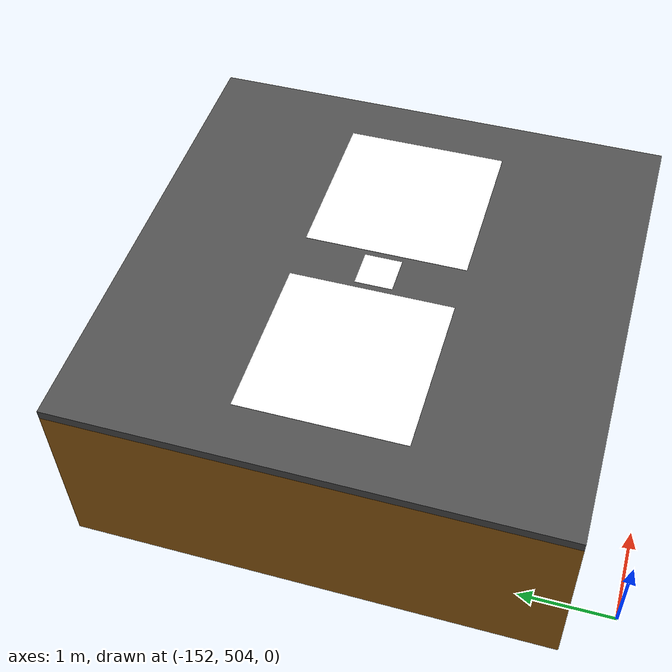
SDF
<sdf version="1.9">
 <world name="applepark_city_uav">
  <include>
   <uri>model://moving_platform_aruco_velocity</uri>
   <name>trailer</name>
   <pose>-150 507 0 0 0 0</pose>
  </include>
 </world>
</sdf>
